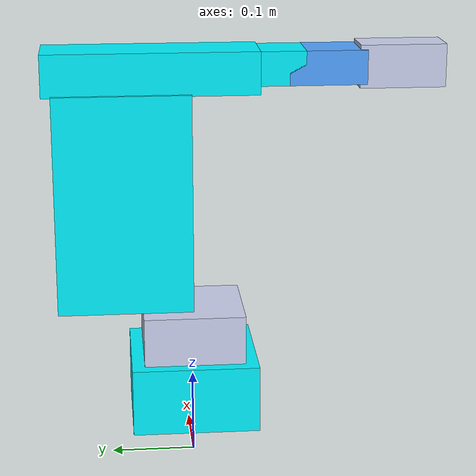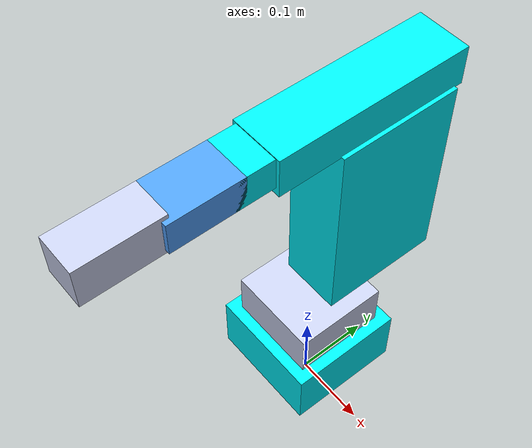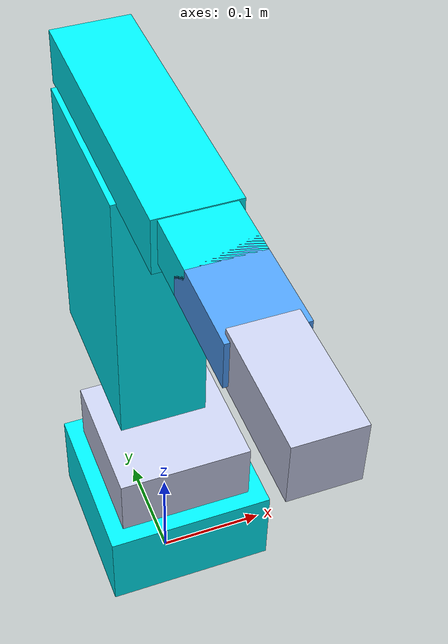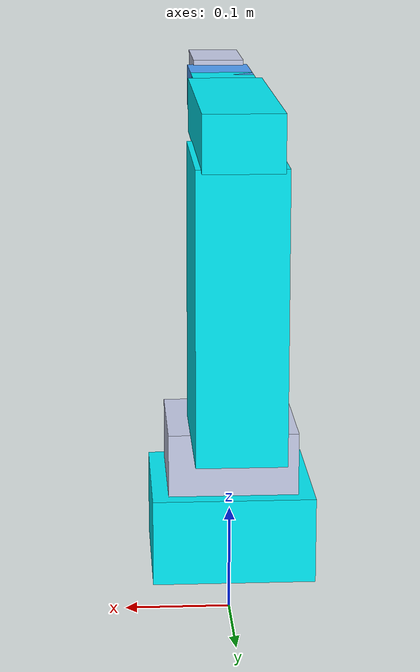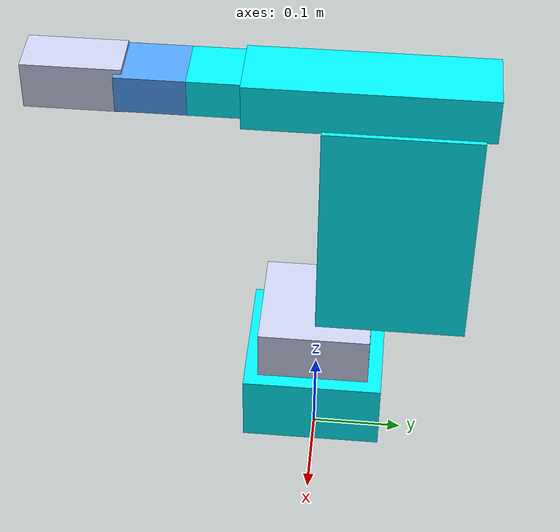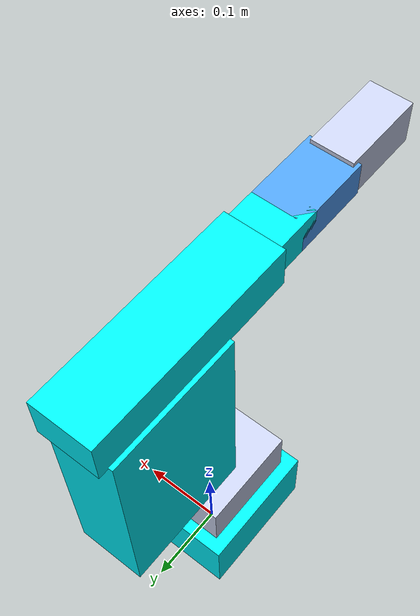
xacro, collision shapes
<?xml version="1.0" encoding="utf-8"?>
<!-- |    This document was autogenerated by xacro from URDF_armv001.urdf              | -->
<!-- |    EDITING THIS FILE BY HAND IS NOT RECOMMENDED                                 | -->
<robot xmlns:xacro="http://www.ros.org/wiki/xacro" name="URDF_armv001">

  <link name="base_footprint"/>
  <joint name="joint_0" type="fixed">
    <origin xyz="0 0 0.0532" rpy="0 0 0" />
    <parent link="base_footprint" />
    <child link="base_link" />
  </joint>
  <link name="base_link">
    <inertial>
      <origin rpy="0 0 0" xyz="0.00012503 1.4745E-05 0.026752"/>
      <mass value="0.0000181"/>
      <inertia ixx="55.145" ixy="1.5556E-06" ixz="1.4779E-06" iyy="103.27" iyz="8.2802E-08" izz="146.16"/>
    </inertial>
    <visual>
      <origin rpy="0 0 0" xyz="0 0 0"/>
      <geometry>
        <mesh filename="package://URDF_armv001/meshes/base_link.STL"/>
      </geometry>
      <material name="">
        <color rgba="0 0.94118 0.98824 1"/>
      </material>
    </visual>
    <collision>
      <origin rpy="0 0 0" xyz="0 0 0.04"/>
      <geometry>
        <box size="0.15 0.15 0.08"/>
      </geometry>
    </collision>
  </link>
  <link name="first_Link">
    <inertial>
      <origin rpy="0 0 0" xyz="0.0019709 -3.7688E-05 0.045814"/>
      <mass value="0.0000105"/>
      <inertia ixx="20.197" ixy="-1.66E-08" ixz="2.2663E-07" iyy="11.25" iyz="7.8462E-08" izz="14.31"/>
    </inertial>
    <visual>
      <origin rpy="0 0 0" xyz="0 0 0"/>
      <geometry>
        <mesh filename="package://URDF_armv001/meshes/first_Link.STL"/>
      </geometry>
      <material name="">
        <color rgba="0.79216 0.81961 0.93333 1"/>
      </material>
    </visual>
    <collision>
      <origin rpy="0 0 0" xyz="0 0 0.03"/>
      <geometry>
        <box size="0.12 0.12 0.06"/>
      </geometry>
    </collision>
  </link>
  <joint name="first_joint" type="revolute">
    <origin rpy="0 0 0" xyz="0 0 0.0785000000000001"/>
    <parent link="base_link"/>
    <child link="first_Link"/>
    <axis xyz="0 0 1"/>
    <limit effort="160" lower="-3.14" upper="3.14" velocity="20.417"/>
  </joint>
  <link name="second_Link">
    <inertial>
      <origin rpy="0 0 0" xyz="0.000857573444558835 0.0776042459103315 0.130616624503666"/>
      <mass value="0.00000966"/>
      <inertia ixx="246.169175712987" ixy="7.15160471159471E-06" ixz="1.14970999493612E-05" iyy="149.301141014258" iyz="-0.00107551298210178" izz="101.59642390867"/>
    </inertial>
    <visual>
      <origin rpy="0 0 0" xyz="0 0 0"/>
      <geometry>
        <mesh filename="package://URDF_armv001/meshes/second_Link.STL"/>
      </geometry>
      <material name="">
        <color rgba="0 0.941176470588235 0.988235294117647 1"/>
      </material>
    </visual>
    <collision>
      <origin rpy="0 0 0" xyz="0 0.08 0.13"/>
      <geometry>
        <box size="0.08 0.16 0.26"/>
      </geometry>
    </collision>
  </link>
  <joint name="second_joint" type="revolute">
    <origin rpy="0 0 0" xyz="0 0 0.0614999999999968"/>
    <parent link="first_Link"/>
    <child link="second_Link"/>
    <axis xyz="-1 0 0"/>
    <limit effort="60" lower="-2.15" upper="1.26" velocity="20.4165"/>
  </joint>
  <link name="third_Link">
    <inertial>
      <origin rpy="0 0 0" xyz="0.00167558365991412 -0.116252462462107 0.0252492816668452"/>
      <mass value="0.0000069"/>
      <inertia ixx="58.2679607750313" ixy="-1.4662142928383E-05" ixz="1.94509615851066E-06" iyy="7.33395566734886" iyz="4.46085226928446E-05" izz="55.3919549010076"/>
    </inertial>
    <visual>
      <origin rpy="0 0 0" xyz="0 0 0"/>
      <geometry>
        <mesh filename="package://URDF_armv001/meshes/third_Link.STL"/>
      </geometry>
      <material name="">
        <color rgba="0 0.941176470588235 0.988235294117647 1"/>
      </material>
    </visual>
    <collision>
      <origin rpy="0 0 0" xyz="0 -0.12 0.025"/>
      <geometry>
        <box size="0.07 0.25 0.05"/>
      </geometry>
    </collision>
  </link>
  <joint name="third_joint" type="revolute">
    <origin rpy="0 0 0" xyz="0 0.165989898732231 0.257913780286487"/>
    <parent link="second_Link"/>
    <child link="third_Link"/>
    <axis xyz="-1 0 0"/>
    <limit effort="17" lower="-0.75" upper="2.38" velocity="32.9805"/>
  </joint>
  <link name="fourth_Link">
    <inertial>
      <origin rpy="0 0 0" xyz="3.0956E-05 -0.027807 -7.0032E-05"/>
      <mass value="0.0000037"/>
      <inertia ixx="3.2899" ixy="2.5288E-06" ixz="-2.3777E-08" iyy="2.1257" iyz="1.4904E-07" izz="2.1529"/>
    </inertial>
    <visual>
      <origin rpy="0 0 0" xyz="0 0 0"/>
      <geometry>
        <mesh filename="package://URDF_armv001/meshes/fourth_Link.STL"/>
      </geometry>
      <material name="">
        <color rgba="0 0.94118 0.98824 1"/>
      </material>
    </visual>
    <collision>
      <origin rpy="0 0 0" xyz="0 -0.02 0"/>
      <geometry>
        <box size="0.06 0.06 0.04"/>
      </geometry>
    </collision>
  </link>
  <joint name="fourth_joint" type="revolute">
    <origin rpy="0 0 0" xyz="0 -0.247999999999997 0.0289999999999987"/>
    <parent link="third_Link"/>
    <child link="fourth_Link"/>
    <axis xyz="0 1 0"/>
    <limit effort="14" lower="-3.14" upper="3.14" velocity="32.9805"/>
  </joint>
  <link name="fifth_Link">
    <inertial>
      <origin rpy="0 0 0" xyz="0.00300098384037063 -0.0489667534520629 -0.00025041259776476"/>
      <mass value="0.0000037"/>
      <inertia ixx="2071.64941375216" ixy="-3.06195815006198E-06" ixz="-5.10277075875545E-08" iyy="3104.81600066296" iyz="9.30254252584598E-08" izz="2271.19764110177"/>
    </inertial>
    <visual>
      <origin rpy="0 0 0" xyz="0 0 0"/>
      <geometry>
        <mesh filename="package://URDF_armv001/meshes/fifth_Link.STL"/>
      </geometry>
      <material name="">
        <color rgba="0.317647058823529 0.635294117647059 1 1"/>
      </material>
    </visual>
    <collision>
      <origin rpy="0 0 0" xyz="0 -0.04 0"/>
      <geometry>
        <box size="0.06 0.09 0.04"/>
      </geometry>
    </collision>
  </link>
  <joint name="fifth_joint" type="revolute">
    <origin rpy="0 0 0" xyz="0 -0.036 0"/>
    <parent link="fourth_Link"/>
    <child link="fifth_Link"/>
    <axis xyz="-1 0 0"/>
    <limit effort="14" lower="-1.57" upper="1.57" velocity="32.9805"/>
  </joint>
  <link name="sixth_Link">
    <inertial>
      <origin rpy="0 0 0" xyz="1.39012723646137E-06 -0.0549727115442942 -0.000135720167939724"/>
      <mass value="0.000005"/>
      <inertia ixx="3561.33730917755" ixy="4.25963069298585E-09" ixz="7.55175416452852E-09" iyy="16234.2067218402" iyz="9.33294369793947E-08" izz="16156.1054644543"/>
    </inertial>
    <visual>
      <origin rpy="0 0 0" xyz="0 0 0"/>
      <geometry>
        <mesh filename="package://URDF_armv001/meshes/sixth_Link.STL"/>
      </geometry>
      <material name="">
        <color rgba="0.792156862745098 0.819607843137255 0.933333333333333 1"/>
      </material>
    </visual>
    <collision>
      <origin rpy="0 0 0" xyz="0 -0.04 0"/>
      <geometry>
        <box size="0.05 0.1 0.05"/>
      </geometry>
    </collision>
  </link>
  <joint name="sixth_joint" type="revolute">
    <origin rpy="0 0 0" xyz="-0.00100000000000486 -0.0869999999999949 0"/>
    <parent link="fifth_Link"/>
    <child link="sixth_Link"/>
    <axis xyz="0 1 0"/>
    <limit effort="14" lower="-3.14" upper="3.14" velocity="32.9805"/>
  </joint>

  <xacro:macro name="transmission_block" params="joint_name">
    <transmission name="${joint_name}_tran">
      <type>transmission_interface/SimpleTransmission</type>
      <joint name="${joint_name}">
        <hardwareInterface>hardware_interface/PositionJointInterface</hardwareInterface>
      </joint>
      <actuator name="${joint_name}_motor">
        <hardwareInterface>hardware_interface/PositionJointInterface</hardwareInterface>
        <mechanicalReduction>1</mechanicalReduction>
      </actuator>
    </transmission>
  </xacro:macro>

  <xacro:transmission_block joint_name="first_joint"/>
  <xacro:transmission_block joint_name="second_joint"/>
  <xacro:transmission_block joint_name="third_joint"/>
  <xacro:transmission_block joint_name="fourth_joint"/>
  <xacro:transmission_block joint_name="fifth_joint"/>
  <xacro:transmission_block joint_name="sixth_joint"/>

  <gazebo>
    <plugin name="gazebo_ros_control" filename="libgazebo_ros_control.so">
      <robotNamespace>/URDF_armv001</robotNamespace>
      <robotSimType>gazebo_ros_control/DefaultRobotHWSim</robotSimType>
      <legacyModeNS>true</legacyModeNS>
    </plugin>
  </gazebo>
</robot>
